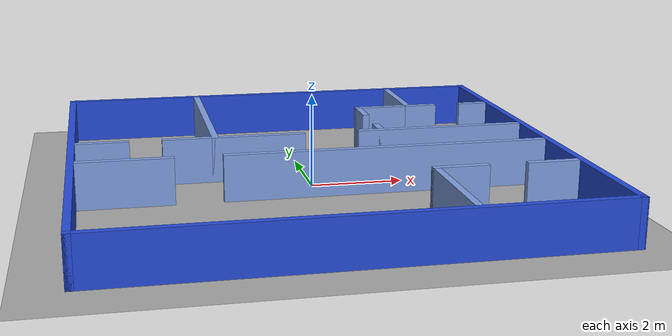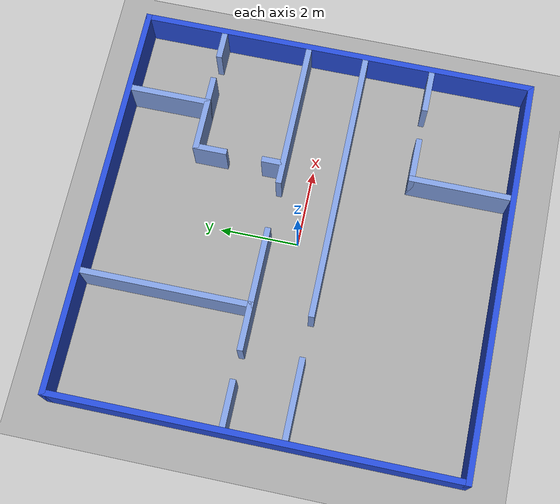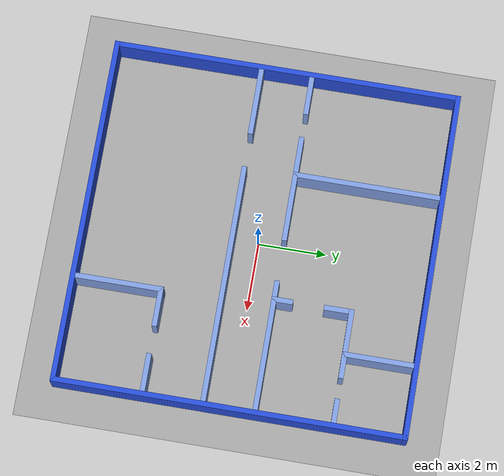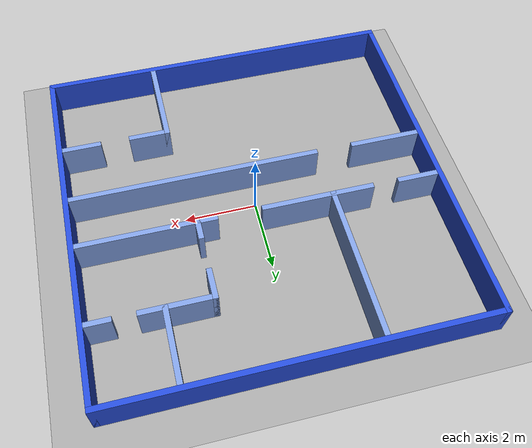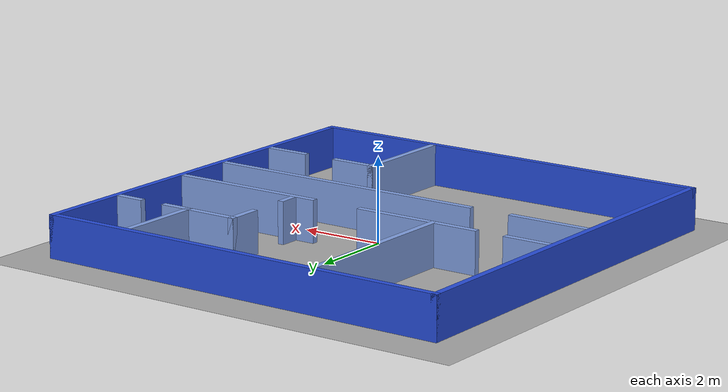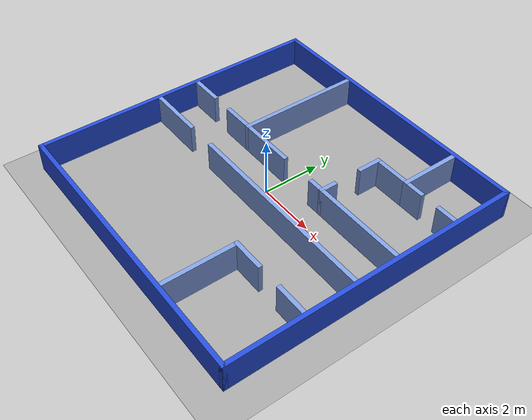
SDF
<?xml version="1.0"?>
<sdf version="1.9">
  <world name="my_world">
    <physics name="1ms" type="ignored">
      <max_step_size>0.001</max_step_size>
      <real_time_factor>1.0</real_time_factor>
    </physics>
    <plugin filename="gz-sim-physics-system" name="gz::sim::systems::Physics"/>
    <plugin filename="gz-sim-user-commands-system" name="gz::sim::systems::UserCommands"/>
    <plugin filename="gz-sim-scene-broadcaster-system" name="gz::sim::systems::SceneBroadcaster"/>
    <plugin filename="gz-sim-sensors-system" name="gz::sim::systems::Sensors">
      <render_engine>ogre2</render_engine>
    </plugin>
    <plugin filename="gz-sim-imu-system" name="gz::sim::systems::Imu"/>

    <light type="directional" name="sun">
      <cast_shadows>true</cast_shadows>
      <pose>0 0 10 0 0 0</pose>
      <diffuse>0.8 0.8 0.8 1</diffuse>
      <specular>0.2 0.2 0.2 1</specular>
      <direction>-0.5 0.1 -0.9</direction>
    </light>

    <model name="ground_plane">
      <static>true</static>
      <link name="link">
        <collision name="collision">
          <geometry><plane><normal>0 0 1</normal><size>100 100</size></plane></geometry>
        </collision>
        <visual name="visual">
          <geometry><plane><normal>0 0 1</normal><size>100 100</size></plane></geometry>
          <material><ambient>0.65 0.65 0.65 1</ambient><diffuse>0.65 0.65 0.65 1</diffuse></material>
        </visual>
      </link>
    </model>

    <model name="shell_north">
      <static>true</static><pose>0 5.075 0.5 0 0 0</pose>
      <link name="link">
        <collision name="collision">
          <geometry><box><size>10.3 0.15 1</size></box></geometry>
        </collision>
        <visual name="visual">
          <geometry><box><size>10.3 0.15 1</size></box></geometry>
          <material><ambient>0.10 0.20 0.65 1</ambient><diffuse>0.15 0.30 0.85 1</diffuse>
            <specular>0.2 0.2 0.25 1</specular></material>
        </visual>
      </link>
    </model>
    <model name="shell_south">
      <static>true</static><pose>0 -5.075 0.5 0 0 0</pose>
      <link name="link">
        <collision name="collision">
          <geometry><box><size>10.3 0.15 1</size></box></geometry>
        </collision>
        <visual name="visual">
          <geometry><box><size>10.3 0.15 1</size></box></geometry>
          <material><ambient>0.10 0.20 0.65 1</ambient><diffuse>0.15 0.30 0.85 1</diffuse>
            <specular>0.2 0.2 0.25 1</specular></material>
        </visual>
      </link>
    </model>
    <model name="shell_east">
      <static>true</static><pose>5.075 0 0.5 0 0 0</pose>
      <link name="link">
        <collision name="collision">
          <geometry><box><size>0.15 10.3 1</size></box></geometry>
        </collision>
        <visual name="visual">
          <geometry><box><size>0.15 10.3 1</size></box></geometry>
          <material><ambient>0.10 0.20 0.65 1</ambient><diffuse>0.15 0.30 0.85 1</diffuse>
            <specular>0.2 0.2 0.25 1</specular></material>
        </visual>
      </link>
    </model>
    <model name="shell_west">
      <static>true</static><pose>-5.075 0 0.5 0 0 0</pose>
      <link name="link">
        <collision name="collision">
          <geometry><box><size>0.15 10.3 1</size></box></geometry>
        </collision>
        <visual name="visual">
          <geometry><box><size>0.15 10.3 1</size></box></geometry>
          <material><ambient>0.10 0.20 0.65 1</ambient><diffuse>0.15 0.30 0.85 1</diffuse>
            <specular>0.2 0.2 0.25 1</specular></material>
        </visual>
      </link>
    </model>
    <model name="wall_hall_north_1">
      <static>true</static><pose>-4.425 0.75 0.5 0 0 0</pose>
      <link name="link">
        <collision name="collision">
          <geometry><box><size>1.15 0.15 1</size></box></geometry>
        </collision>
        <visual name="visual">
          <geometry><box><size>1.15 0.15 1</size></box></geometry>
          <material><ambient>0.30 0.40 0.62 1</ambient><diffuse>0.50 0.62 0.88 1</diffuse>
            <specular>0.2 0.2 0.25 1</specular></material>
        </visual>
      </link>
    </model>
    <model name="wall_hall_north_2">
      <static>true</static><pose>-1.575 0.75 0.5 0 0 0</pose>
      <link name="link">
        <collision name="collision">
          <geometry><box><size>3.15 0.15 1</size></box></geometry>
        </collision>
        <visual name="visual">
          <geometry><box><size>3.15 0.15 1</size></box></geometry>
          <material><ambient>0.30 0.40 0.62 1</ambient><diffuse>0.50 0.62 0.88 1</diffuse>
            <specular>0.2 0.2 0.25 1</specular></material>
        </visual>
      </link>
    </model>
    <model name="wall_hall_north_3">
      <static>true</static><pose>3.1 0.75 0.5 0 0 0</pose>
      <link name="link">
        <collision name="collision">
          <geometry><box><size>3.8 0.15 1</size></box></geometry>
        </collision>
        <visual name="visual">
          <geometry><box><size>3.8 0.15 1</size></box></geometry>
          <material><ambient>0.30 0.40 0.62 1</ambient><diffuse>0.50 0.62 0.88 1</diffuse>
            <specular>0.2 0.2 0.25 1</specular></material>
        </visual>
      </link>
    </model>
    <model name="wall_hall_south_1">
      <static>true</static><pose>-4 -0.75 0.5 0 0 0</pose>
      <link name="link">
        <collision name="collision">
          <geometry><box><size>2 0.15 1</size></box></geometry>
        </collision>
        <visual name="visual">
          <geometry><box><size>2 0.15 1</size></box></geometry>
          <material><ambient>0.30 0.40 0.62 1</ambient><diffuse>0.50 0.62 0.88 1</diffuse>
            <specular>0.2 0.2 0.25 1</specular></material>
        </visual>
      </link>
    </model>
    <model name="wall_hall_south_2">
      <static>true</static><pose>1.5 -0.75 0.5 0 0 0</pose>
      <link name="link">
        <collision name="collision">
          <geometry><box><size>7 0.15 1</size></box></geometry>
        </collision>
        <visual name="visual">
          <geometry><box><size>7 0.15 1</size></box></geometry>
          <material><ambient>0.30 0.40 0.62 1</ambient><diffuse>0.50 0.62 0.88 1</diffuse>
            <specular>0.2 0.2 0.25 1</specular></material>
        </visual>
      </link>
    </model>
    <model name="wall_bed_kitchen_1">
      <static>true</static><pose>-2 2.8375 0.5 0 0 0</pose>
      <link name="link">
        <collision name="collision">
          <geometry><box><size>0.15 4.325 1</size></box></geometry>
        </collision>
        <visual name="visual">
          <geometry><box><size>0.15 4.325 1</size></box></geometry>
          <material><ambient>0.30 0.40 0.62 1</ambient><diffuse>0.50 0.62 0.88 1</diffuse>
            <specular>0.2 0.2 0.25 1</specular></material>
        </visual>
      </link>
    </model>
    <model name="wall_bath_south_1">
      <static>true</static><pose>3.3125 3 0.5 0 0 0</pose>
      <link name="link">
        <collision name="collision">
          <geometry><box><size>0.775 0.15 1</size></box></geometry>
        </collision>
        <visual name="visual">
          <geometry><box><size>0.775 0.15 1</size></box></geometry>
          <material><ambient>0.30 0.40 0.62 1</ambient><diffuse>0.50 0.62 0.88 1</diffuse>
            <specular>0.2 0.2 0.25 1</specular></material>
        </visual>
      </link>
    </model>
    <model name="wall_bath_south_2">
      <static>true</static><pose>4.65 3 0.5 0 0 0</pose>
      <link name="link">
        <collision name="collision">
          <geometry><box><size>0.7 0.15 1</size></box></geometry>
        </collision>
        <visual name="visual">
          <geometry><box><size>0.7 0.15 1</size></box></geometry>
          <material><ambient>0.30 0.40 0.62 1</ambient><diffuse>0.50 0.62 0.88 1</diffuse>
            <specular>0.2 0.2 0.25 1</specular></material>
        </visual>
      </link>
    </model>
    <model name="wall_bath_west_1">
      <static>true</static><pose>3 3.9625 0.5 0 0 0</pose>
      <link name="link">
        <collision name="collision">
          <geometry><box><size>0.15 2.075 1</size></box></geometry>
        </collision>
        <visual name="visual">
          <geometry><box><size>0.15 2.075 1</size></box></geometry>
          <material><ambient>0.30 0.40 0.62 1</ambient><diffuse>0.50 0.62 0.88 1</diffuse>
            <specular>0.2 0.2 0.25 1</specular></material>
        </visual>
      </link>
    </model>
    <model name="wall_master_north_1">
      <static>true</static><pose>2.5125 -2.5 0.5 0 0 0</pose>
      <link name="link">
        <collision name="collision">
          <geometry><box><size>1.175 0.15 1</size></box></geometry>
        </collision>
        <visual name="visual">
          <geometry><box><size>1.175 0.15 1</size></box></geometry>
          <material><ambient>0.30 0.40 0.62 1</ambient><diffuse>0.50 0.62 0.88 1</diffuse>
            <specular>0.2 0.2 0.25 1</specular></material>
        </visual>
      </link>
    </model>
    <model name="wall_master_north_2">
      <static>true</static><pose>4.45 -2.5 0.5 0 0 0</pose>
      <link name="link">
        <collision name="collision">
          <geometry><box><size>1.1 0.15 1</size></box></geometry>
        </collision>
        <visual name="visual">
          <geometry><box><size>1.1 0.15 1</size></box></geometry>
          <material><ambient>0.30 0.40 0.62 1</ambient><diffuse>0.50 0.62 0.88 1</diffuse>
            <specular>0.2 0.2 0.25 1</specular></material>
        </visual>
      </link>
    </model>
    <model name="wall_master_west_1">
      <static>true</static><pose>2 -3.7125 0.5 0 0 0</pose>
      <link name="link">
        <collision name="collision">
          <geometry><box><size>0.15 2.575 1</size></box></geometry>
        </collision>
        <visual name="visual">
          <geometry><box><size>0.15 2.575 1</size></box></geometry>
          <material><ambient>0.30 0.40 0.62 1</ambient><diffuse>0.50 0.62 0.88 1</diffuse>
            <specular>0.2 0.2 0.25 1</specular></material>
        </visual>
      </link>
    </model>
    <model name="wall_utility_1">
      <static>true</static><pose>1.75 0.9875 0.5 0 0 0</pose>
      <link name="link">
        <collision name="collision">
          <geometry><box><size>0.15 0.625 1</size></box></geometry>
        </collision>
        <visual name="visual">
          <geometry><box><size>0.15 0.625 1</size></box></geometry>
          <material><ambient>0.30 0.40 0.62 1</ambient><diffuse>0.50 0.62 0.88 1</diffuse>
            <specular>0.2 0.2 0.25 1</specular></material>
        </visual>
      </link>
    </model>
    <model name="wall_utility_2">
      <static>true</static><pose>1.75 2.6375 0.5 0 0 0</pose>
      <link name="link">
        <collision name="collision">
          <geometry><box><size>0.15 0.875 1</size></box></geometry>
        </collision>
        <visual name="visual">
          <geometry><box><size>0.15 0.875 1</size></box></geometry>
          <material><ambient>0.30 0.40 0.62 1</ambient><diffuse>0.50 0.62 0.88 1</diffuse>
            <specular>0.2 0.2 0.25 1</specular></material>
        </visual>
      </link>
    </model>
    <model name="wall_utility_return_1">
      <static>true</static><pose>2.375 3 0.5 0 0 0</pose>
      <link name="link">
        <collision name="collision">
          <geometry><box><size>1.4 0.15 1</size></box></geometry>
        </collision>
        <visual name="visual">
          <geometry><box><size>1.4 0.15 1</size></box></geometry>
          <material><ambient>0.30 0.40 0.62 1</ambient><diffuse>0.50 0.62 0.88 1</diffuse>
            <specular>0.2 0.2 0.25 1</specular></material>
        </visual>
      </link>
    </model>
  </world>
</sdf>
